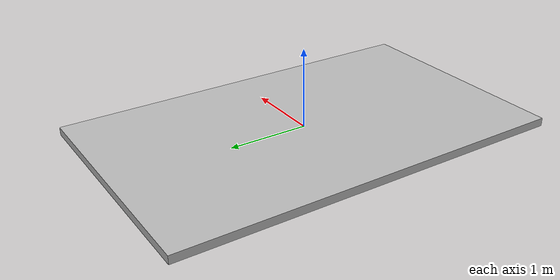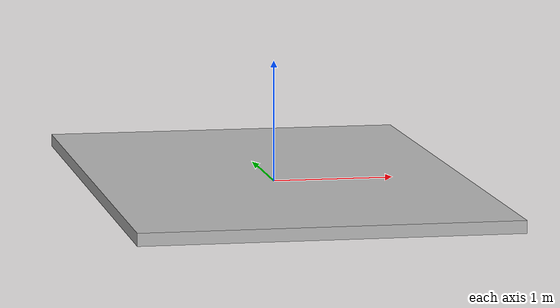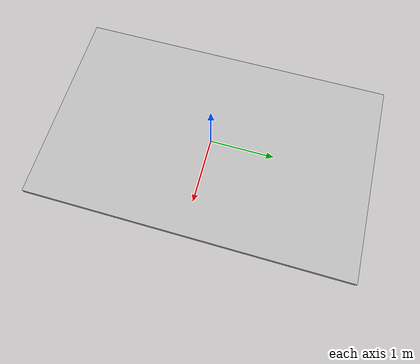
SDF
<?xml version="1.0" ?>
<sdf version="1.6">
  <model name="parking_space_yellow">
    <pose>0 0 0 0 0 0</pose>
    <static>true</static>
    <link name="link">
      <inertial>
        <pose>0 0 0 0 0 0</pose>
        <mass>1</mass>
        <inertia>
          <ixx>1</ixx>
          <iyy>1</iyy>
          <izz>1</izz>
          <ixy>0</ixy>
          <ixz>0</ixz>
        </inertia>
      </inertial>
      <visual name="visual">
        <geometry>
          <mesh>
            <uri>model://parking_space_yellow/meshes/parking_space.dae</uri>
          </mesh>
        </geometry>
      </visual>
      <collision name="collision">
        <geometry>
          <mesh>
            <uri>model://parking_space_yellow/meshes/parking_space.dae</uri>
          </mesh>
        </geometry>
      </collision>
    </link>
  </model>
</sdf>
